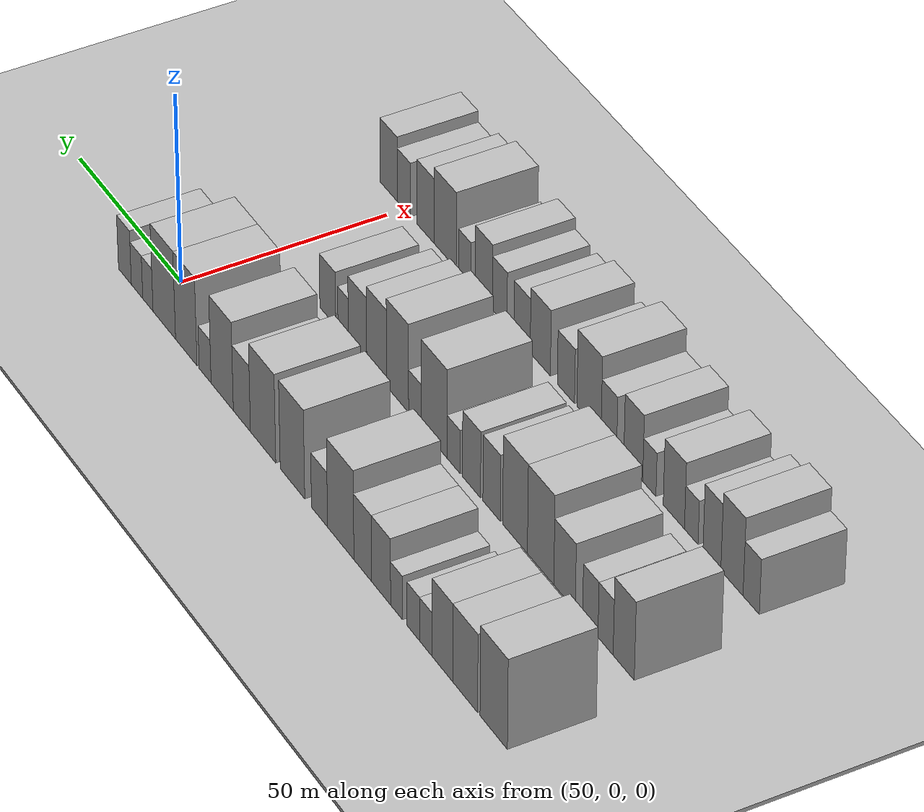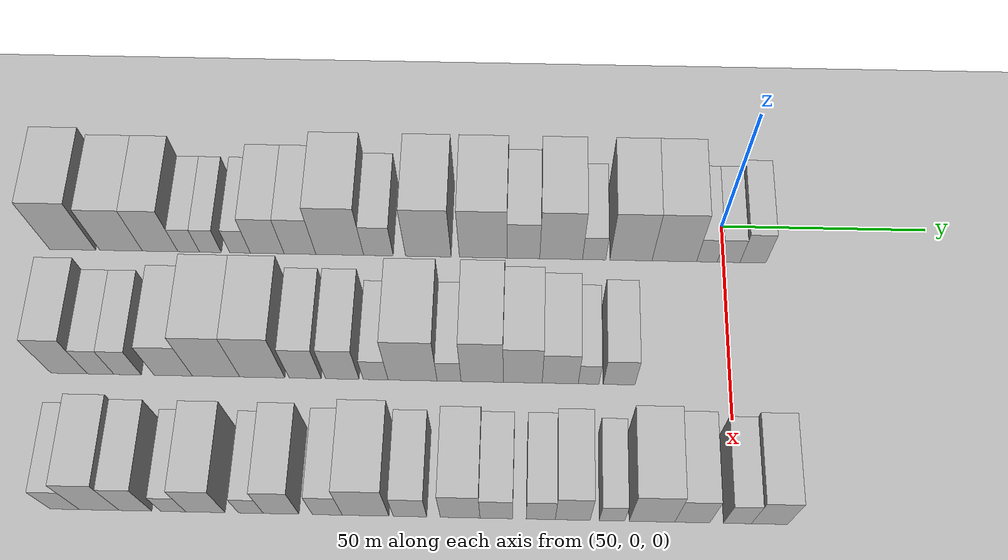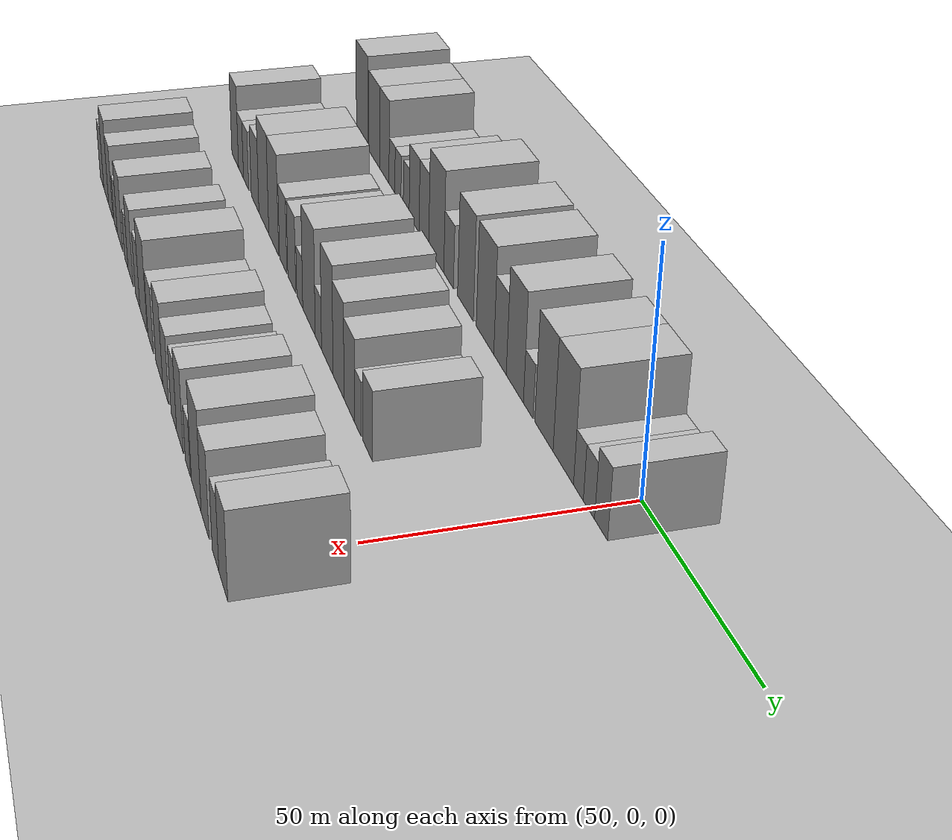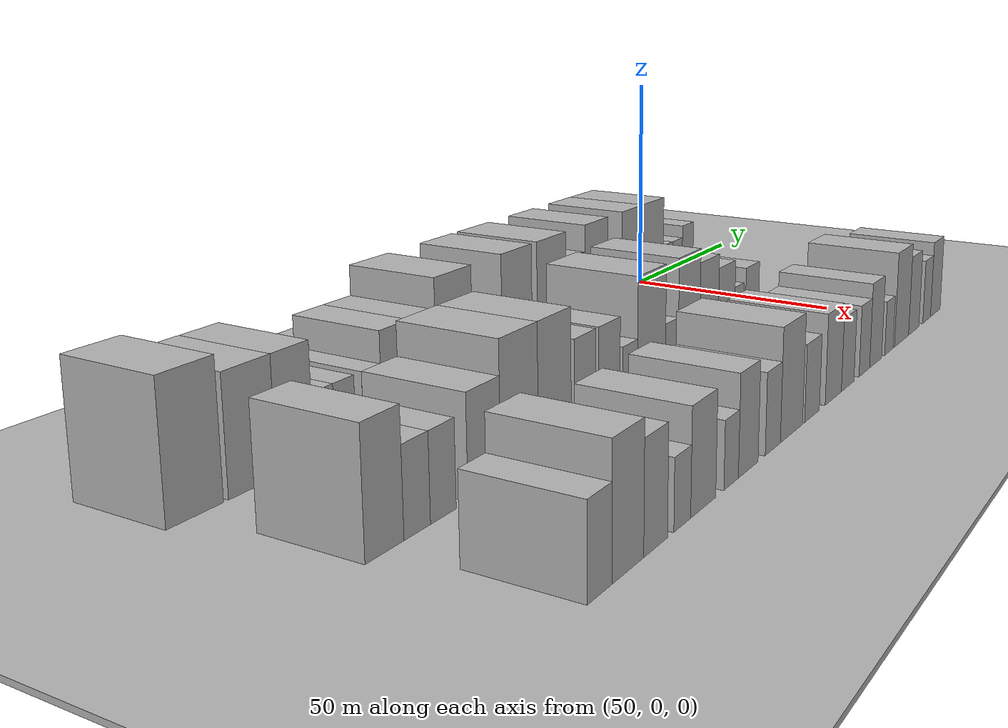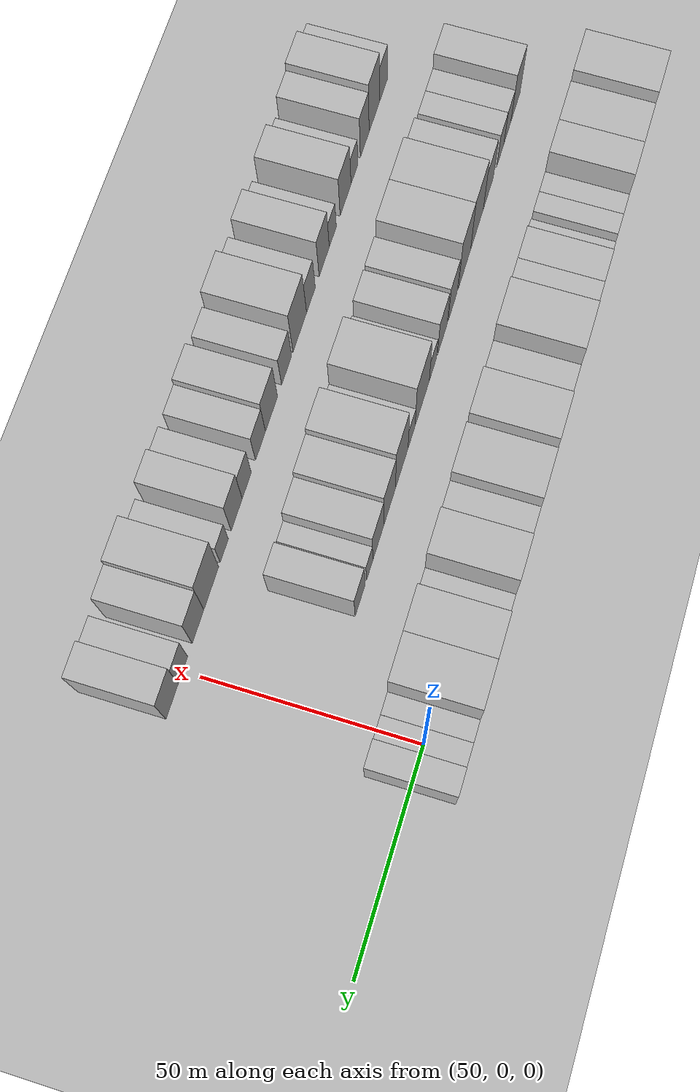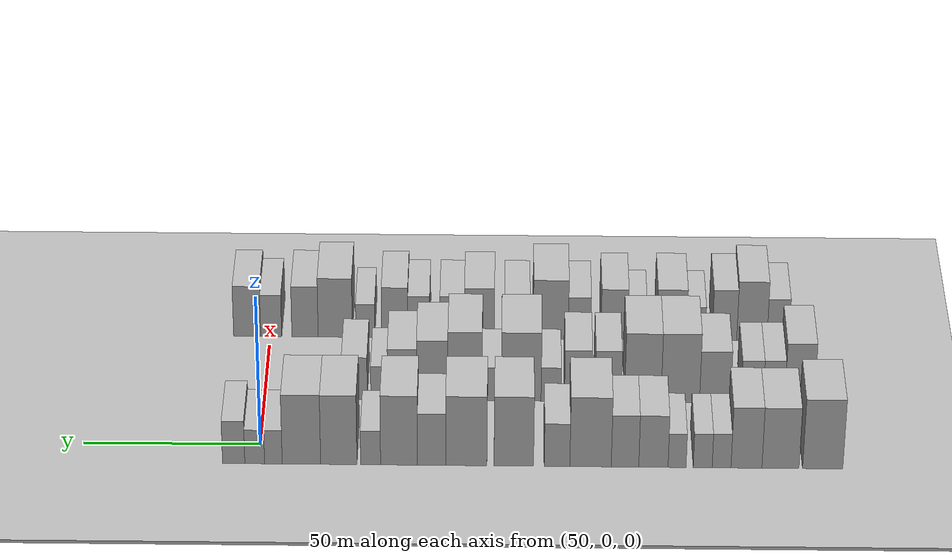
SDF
<sdf version="1.6">
 <world name="default">
  <include><name>ground_plane_1</name><uri>model://HANNAS_ground_plane</uri></include>
  <include>
   <name>ground_plane_2</name>
   <uri>model://HANNAS_ground_plane</uri>
   <pose>100 0 0  0 0 0</pose>
  </include>
  <model name="building_20">
   <static>1</static>
   <pose>50.0000 -158.3148 0 0.000000 0.000000 0.000000</pose>
   <link name="link">
    <pose>0 0 12.00 0 0 0</pose>
    <collision name="collision"><geometry><box><size>20.0000 11.2554 24.0000</size></box></geometry></collision>
    <visual name="visual">
     <cast_shadows>0</cast_shadows>
     <geometry><box><size>20.0000 11.2554 24.0000</size></box></geometry>
     <material>
      <script>
       <uri>model://HANNAS_wall/materials/scripts</uri>
       <uri>model://HANNAS_wall/materials/textures</uri>
       <name>vrc/HANNAS_wall</name>
      </script>
     </material>
    </visual>
   </link>
  </model>
  <model name="building_21">
   <static>1</static>
   <pose>50.0000 -146.4934 0 0.000000 0.000000 0.000000</pose>
   <link name="link">
    <pose>0 0 10.50 0 0 0</pose>
    <collision name="collision"><geometry><box><size>20.0000 10.3874 21.0000</size></box></geometry></collision>
    <visual name="visual">
     <cast_shadows>0</cast_shadows>
     <geometry><box><size>20.0000 10.3874 21.0000</size></box></geometry>
     <material>
      <script>
       <uri>model://HANNAS_wall/materials/scripts</uri>
       <uri>model://HANNAS_wall/materials/textures</uri>
       <name>vrc/HANNAS_wall</name>
      </script>
     </material>
    </visual>
   </link>
  </model>
  <model name="building_22">
   <static>1</static>
   <pose>50.0000 -136.9624 0 0.000000 0.000000 0.000000</pose>
   <link name="link">
    <pose>0 0 10.50 0 0 0</pose>
    <collision name="collision"><geometry><box><size>20.0000 8.6745 21.0000</size></box></geometry></collision>
    <visual name="visual">
     <cast_shadows>0</cast_shadows>
     <geometry><box><size>20.0000 8.6745 21.0000</size></box></geometry>
     <material>
      <script>
       <uri>model://HANNAS_wall/materials/scripts</uri>
       <uri>model://HANNAS_wall/materials/textures</uri>
       <name>vrc/HANNAS_wall</name>
      </script>
     </material>
    </visual>
   </link>
  </model>
  <model name="building_23">
   <static>1</static>
   <pose>50.0000 -129.9868 0 0.000000 0.000000 0.000000</pose>
   <link name="link">
    <pose>0 0 6.00 0 0 0</pose>
    <collision name="collision"><geometry><box><size>20.0000 5.2768 12.0000</size></box></geometry></collision>
    <visual name="visual">
     <cast_shadows>0</cast_shadows>
     <geometry><box><size>20.0000 5.2768 12.0000</size></box></geometry>
     <material>
      <script>
       <uri>model://HANNAS_wall/materials/scripts</uri>
       <uri>model://HANNAS_wall/materials/textures</uri>
       <name>vrc/HANNAS_wall</name>
      </script>
     </material>
    </visual>
   </link>
  </model>
  <model name="building_24">
   <static>1</static>
   <pose>50.0000 -124.6941 0 0.000000 0.000000 0.000000</pose>
   <link name="link">
    <pose>0 0 6.00 0 0 0</pose>
    <collision name="collision"><geometry><box><size>20.0000 5.3085 12.0000</size></box></geometry></collision>
    <visual name="visual">
     <cast_shadows>0</cast_shadows>
     <geometry><box><size>20.0000 5.3085 12.0000</size></box></geometry>
     <material>
      <script>
       <uri>model://HANNAS_wall/materials/scripts</uri>
       <uri>model://HANNAS_wall/materials/textures</uri>
       <name>vrc/HANNAS_wall</name>
      </script>
     </material>
    </visual>
   </link>
  </model>
  <model name="building_25">
   <static>1</static>
   <pose>50.0000 -117.5120 0 0.000000 0.000000 0.000000</pose>
   <link name="link">
    <pose>0 0 6.00 0 0 0</pose>
    <collision name="collision"><geometry><box><size>20.0000 5.0557 12.0000</size></box></geometry></collision>
    <visual name="visual">
     <cast_shadows>0</cast_shadows>
     <geometry><box><size>20.0000 5.0557 12.0000</size></box></geometry>
     <material>
      <script>
       <uri>model://HANNAS_wall/materials/scripts</uri>
       <uri>model://HANNAS_wall/materials/textures</uri>
       <name>vrc/HANNAS_wall</name>
      </script>
     </material>
    </visual>
   </link>
  </model>
  <model name="building_26">
   <static>1</static>
   <pose>50.0000 -110.8782 0 0.000000 0.000000 0.000000</pose>
   <link name="link">
    <pose>0 0 9.00 0 0 0</pose>
    <collision name="collision"><geometry><box><size>20.0000 8.2120 18.0000</size></box></geometry></collision>
    <visual name="visual">
     <cast_shadows>0</cast_shadows>
     <geometry><box><size>20.0000 8.2120 18.0000</size></box></geometry>
     <material>
      <script>
       <uri>model://HANNAS_wall/materials/scripts</uri>
       <uri>model://HANNAS_wall/materials/textures</uri>
       <name>vrc/HANNAS_wall</name>
      </script>
     </material>
    </visual>
   </link>
  </model>
  <model name="building_27">
   <static>1</static>
   <pose>50.0000 -102.9081 0 0.000000 0.000000 0.000000</pose>
   <link name="link">
    <pose>0 0 9.00 0 0 0</pose>
    <collision name="collision"><geometry><box><size>20.0000 7.7282 18.0000</size></box></geometry></collision>
    <visual name="visual">
     <cast_shadows>0</cast_shadows>
     <geometry><box><size>20.0000 7.7282 18.0000</size></box></geometry>
     <material>
      <script>
       <uri>model://HANNAS_wall/materials/scripts</uri>
       <uri>model://HANNAS_wall/materials/textures</uri>
       <name>vrc/HANNAS_wall</name>
      </script>
     </material>
    </visual>
   </link>
  </model>
  <model name="building_28">
   <static>1</static>
   <pose>50.0000 -93.2294 0 0.000000 0.000000 0.000000</pose>
   <link name="link">
    <pose>0 0 12.00 0 0 0</pose>
    <collision name="collision"><geometry><box><size>20.0000 11.6291 24.0000</size></box></geometry></collision>
    <visual name="visual">
     <cast_shadows>0</cast_shadows>
     <geometry><box><size>20.0000 11.6291 24.0000</size></box></geometry>
     <material>
      <script>
       <uri>model://HANNAS_wall/materials/scripts</uri>
       <uri>model://HANNAS_wall/materials/textures</uri>
       <name>vrc/HANNAS_wall</name>
      </script>
     </material>
    </visual>
   </link>
  </model>
  <model name="building_29">
   <static>1</static>
   <pose>50.0000 -83.8291 0 0.000000 0.000000 0.000000</pose>
   <link name="link">
    <pose>0 0 7.50 0 0 0</pose>
    <collision name="collision"><geometry><box><size>20.0000 7.1716 15.0000</size></box></geometry></collision>
    <visual name="visual">
     <cast_shadows>0</cast_shadows>
     <geometry><box><size>20.0000 7.1716 15.0000</size></box></geometry>
     <material>
      <script>
       <uri>model://HANNAS_wall/materials/scripts</uri>
       <uri>model://HANNAS_wall/materials/textures</uri>
       <name>vrc/HANNAS_wall</name>
      </script>
     </material>
    </visual>
   </link>
  </model>
  <model name="building_30">
   <static>1</static>
   <pose>50.0000 -71.7021 0 0.000000 0.000000 0.000000</pose>
   <link name="link">
    <pose>0 0 12.00 0 0 0</pose>
    <collision name="collision"><geometry><box><size>20.0000 11.0824 24.0000</size></box></geometry></collision>
    <visual name="visual">
     <cast_shadows>0</cast_shadows>
     <geometry><box><size>20.0000 11.0824 24.0000</size></box></geometry>
     <material>
      <script>
       <uri>model://HANNAS_wall/materials/scripts</uri>
       <uri>model://HANNAS_wall/materials/textures</uri>
       <name>vrc/HANNAS_wall</name>
      </script>
     </material>
    </visual>
   </link>
  </model>
  <model name="building_31">
   <static>1</static>
   <pose>50.0000 -58.3676 0 0.000000 0.000000 0.000000</pose>
   <link name="link">
    <pose>0 0 12.00 0 0 0</pose>
    <collision name="collision"><geometry><box><size>20.0000 11.5866 24.0000</size></box></geometry></collision>
    <visual name="visual">
     <cast_shadows>0</cast_shadows>
     <geometry><box><size>20.0000 11.5866 24.0000</size></box></geometry>
     <material>
      <script>
       <uri>model://HANNAS_wall/materials/scripts</uri>
       <uri>model://HANNAS_wall/materials/textures</uri>
       <name>vrc/HANNAS_wall</name>
      </script>
     </material>
    </visual>
   </link>
  </model>
  <model name="building_32">
   <static>1</static>
   <pose>50.0000 -48.6234 0 0.000000 0.000000 0.000000</pose>
   <link name="link">
    <pose>0 0 9.00 0 0 0</pose>
    <collision name="collision"><geometry><box><size>20.0000 7.9017 18.0000</size></box></geometry></collision>
    <visual name="visual">
     <cast_shadows>0</cast_shadows>
     <geometry><box><size>20.0000 7.9017 18.0000</size></box></geometry>
     <material>
      <script>
       <uri>model://HANNAS_wall/materials/scripts</uri>
       <uri>model://HANNAS_wall/materials/textures</uri>
       <name>vrc/HANNAS_wall</name>
      </script>
     </material>
    </visual>
   </link>
  </model>
  <model name="building_33">
   <static>1</static>
   <pose>50.0000 -39.4885 0 0.000000 0.000000 0.000000</pose>
   <link name="link">
    <pose>0 0 12.00 0 0 0</pose>
    <collision name="collision"><geometry><box><size>20.0000 10.3681 24.0000</size></box></geometry></collision>
    <visual name="visual">
     <cast_shadows>0</cast_shadows>
     <geometry><box><size>20.0000 10.3681 24.0000</size></box></geometry>
     <material>
      <script>
       <uri>model://HANNAS_wall/materials/scripts</uri>
       <uri>model://HANNAS_wall/materials/textures</uri>
       <name>vrc/HANNAS_wall</name>
      </script>
     </material>
    </visual>
   </link>
  </model>
  <model name="building_34">
   <static>1</static>
   <pose>50.0000 -31.4960 0 0.000000 0.000000 0.000000</pose>
   <link name="link">
    <pose>0 0 6.00 0 0 0</pose>
    <collision name="collision"><geometry><box><size>20.0000 5.6169 12.0000</size></box></geometry></collision>
    <visual name="visual">
     <cast_shadows>0</cast_shadows>
     <geometry><box><size>20.0000 5.6169 12.0000</size></box></geometry>
     <material>
      <script>
       <uri>model://HANNAS_wall/materials/scripts</uri>
       <uri>model://HANNAS_wall/materials/textures</uri>
       <name>vrc/HANNAS_wall</name>
      </script>
     </material>
    </visual>
   </link>
  </model>
  <model name="building_35">
   <static>1</static>
   <pose>50.0000 -22.5851 0 0.000000 0.000000 0.000000</pose>
   <link name="link">
    <pose>0 0 12.00 0 0 0</pose>
    <collision name="collision"><geometry><box><size>20.0000 10.2047 24.0000</size></box></geometry></collision>
    <visual name="visual">
     <cast_shadows>0</cast_shadows>
     <geometry><box><size>20.0000 10.2047 24.0000</size></box></geometry>
     <material>
      <script>
       <uri>model://HANNAS_wall/materials/scripts</uri>
       <uri>model://HANNAS_wall/materials/textures</uri>
       <name>vrc/HANNAS_wall</name>
      </script>
     </material>
    </visual>
   </link>
  </model>
  <model name="building_36">
   <static>1</static>
   <pose>50.0000 -12.0826 0 0.000000 0.000000 0.000000</pose>
   <link name="link">
    <pose>0 0 12.00 0 0 0</pose>
    <collision name="collision"><geometry><box><size>20.0000 10.8003 24.0000</size></box></geometry></collision>
    <visual name="visual">
     <cast_shadows>0</cast_shadows>
     <geometry><box><size>20.0000 10.8003 24.0000</size></box></geometry>
     <material>
      <script>
       <uri>model://HANNAS_wall/materials/scripts</uri>
       <uri>model://HANNAS_wall/materials/textures</uri>
       <name>vrc/HANNAS_wall</name>
      </script>
     </material>
    </visual>
   </link>
  </model>
  <model name="building_37">
   <static>1</static>
   <pose>50.0000 -4.2004 0 0.000000 0.000000 0.000000</pose>
   <link name="link">
    <pose>0 0 6.00 0 0 0</pose>
    <collision name="collision"><geometry><box><size>20.0000 4.9642 12.0000</size></box></geometry></collision>
    <visual name="visual">
     <cast_shadows>0</cast_shadows>
     <geometry><box><size>20.0000 4.9642 12.0000</size></box></geometry>
     <material>
      <script>
       <uri>model://HANNAS_wall/materials/scripts</uri>
       <uri>model://HANNAS_wall/materials/textures</uri>
       <name>vrc/HANNAS_wall</name>
      </script>
     </material>
    </visual>
   </link>
  </model>
  <model name="building_38">
   <static>1</static>
   <pose>50.0000 1.0541 0 0.000000 0.000000 0.000000</pose>
   <link name="link">
    <pose>0 0 6.00 0 0 0</pose>
    <collision name="collision"><geometry><box><size>20.0000 5.5447 12.0000</size></box></geometry></collision>
    <visual name="visual">
     <cast_shadows>0</cast_shadows>
     <geometry><box><size>20.0000 5.5447 12.0000</size></box></geometry>
     <material>
      <script>
       <uri>model://HANNAS_wall/materials/scripts</uri>
       <uri>model://HANNAS_wall/materials/textures</uri>
       <name>vrc/HANNAS_wall</name>
      </script>
     </material>
    </visual>
   </link>
  </model>
  <model name="building_39">
   <static>1</static>
   <pose>50.0000 6.9536 0 0.000000 0.000000 0.000000</pose>
   <link name="link">
    <pose>0 0 7.50 0 0 0</pose>
    <collision name="collision"><geometry><box><size>20.0000 6.2543 15.0000</size></box></geometry></collision>
    <visual name="visual">
     <cast_shadows>0</cast_shadows>
     <geometry><box><size>20.0000 6.2543 15.0000</size></box></geometry>
     <material>
      <script>
       <uri>model://HANNAS_wall/materials/scripts</uri>
       <uri>model://HANNAS_wall/materials/textures</uri>
       <name>vrc/HANNAS_wall</name>
      </script>
     </material>
    </visual>
   </link>
  </model>
  <model name="building_95">
   <static>1</static>
   <pose>82.0000 -153.7157 0 0.000000 0.000000 0.000000</pose>
   <link name="link">
    <pose>0 0 10.50 0 0 0</pose>
    <collision name="collision"><geometry><box><size>20.0000 8.5290 21.0000</size></box></geometry></collision>
    <visual name="visual">
     <cast_shadows>0</cast_shadows>
     <geometry><box><size>20.0000 8.5290 21.0000</size></box></geometry>
     <material>
      <script>
       <uri>model://HANNAS_wall/materials/scripts</uri>
       <uri>model://HANNAS_wall/materials/textures</uri>
       <name>vrc/HANNAS_wall</name>
      </script>
     </material>
    </visual>
   </link>
  </model>
  <model name="building_96">
   <static>1</static>
   <pose>82.0000 -146.3620 0 0.000000 0.000000 0.000000</pose>
   <link name="link">
    <pose>0 0 7.50 0 0 0</pose>
    <collision name="collision"><geometry><box><size>20.0000 6.1785 15.0000</size></box></geometry></collision>
    <visual name="visual">
     <cast_shadows>0</cast_shadows>
     <geometry><box><size>20.0000 6.1785 15.0000</size></box></geometry>
     <material>
      <script>
       <uri>model://HANNAS_wall/materials/scripts</uri>
       <uri>model://HANNAS_wall/materials/textures</uri>
       <name>vrc/HANNAS_wall</name>
      </script>
     </material>
    </visual>
   </link>
  </model>
  <model name="building_97">
   <static>1</static>
   <pose>82.0000 -140.0977 0 0.000000 0.000000 0.000000</pose>
   <link name="link">
    <pose>0 0 7.50 0 0 0</pose>
    <collision name="collision"><geometry><box><size>20.0000 6.3500 15.0000</size></box></geometry></collision>
    <visual name="visual">
     <cast_shadows>0</cast_shadows>
     <geometry><box><size>20.0000 6.3500 15.0000</size></box></geometry>
     <material>
      <script>
       <uri>model://HANNAS_wall/materials/scripts</uri>
       <uri>model://HANNAS_wall/materials/textures</uri>
       <name>vrc/HANNAS_wall</name>
      </script>
     </material>
    </visual>
   </link>
  </model>
  <model name="building_98">
   <static>1</static>
   <pose>82.0000 -129.4753 0 0.000000 0.000000 0.000000</pose>
   <link name="link">
    <pose>0 0 9.00 0 0 0</pose>
    <collision name="collision"><geometry><box><size>20.0000 8.8949 18.0000</size></box></geometry></collision>
    <visual name="visual">
     <cast_shadows>0</cast_shadows>
     <geometry><box><size>20.0000 8.8949 18.0000</size></box></geometry>
     <material>
      <script>
       <uri>model://HANNAS_wall/materials/scripts</uri>
       <uri>model://HANNAS_wall/materials/textures</uri>
       <name>vrc/HANNAS_wall</name>
      </script>
     </material>
    </visual>
   </link>
  </model>
  <model name="building_99">
   <static>1</static>
   <pose>82.0000 -119.5047 0 0.000000 0.000000 0.000000</pose>
   <link name="link">
    <pose>0 0 12.00 0 0 0</pose>
    <collision name="collision"><geometry><box><size>20.0000 11.0463 24.0000</size></box></geometry></collision>
    <visual name="visual">
     <cast_shadows>0</cast_shadows>
     <geometry><box><size>20.0000 11.0463 24.0000</size></box></geometry>
     <material>
      <script>
       <uri>model://HANNAS_wall/materials/scripts</uri>
       <uri>model://HANNAS_wall/materials/textures</uri>
       <name>vrc/HANNAS_wall</name>
      </script>
     </material>
    </visual>
   </link>
  </model>
  <model name="building_100">
   <static>1</static>
   <pose>82.0000 -108.7408 0 0.000000 0.000000 0.000000</pose>
   <link name="link">
    <pose>0 0 12.00 0 0 0</pose>
    <collision name="collision"><geometry><box><size>20.0000 10.4816 24.0000</size></box></geometry></collision>
    <visual name="visual">
     <cast_shadows>0</cast_shadows>
     <geometry><box><size>20.0000 10.4816 24.0000</size></box></geometry>
     <material>
      <script>
       <uri>model://HANNAS_wall/materials/scripts</uri>
       <uri>model://HANNAS_wall/materials/textures</uri>
       <name>vrc/HANNAS_wall</name>
      </script>
     </material>
    </visual>
   </link>
  </model>
  <model name="building_101">
   <static>1</static>
   <pose>82.0000 -98.7670 0 0.000000 0.000000 0.000000</pose>
   <link name="link">
    <pose>0 0 9.00 0 0 0</pose>
    <collision name="collision"><geometry><box><size>20.0000 7.4661 18.0000</size></box></geometry></collision>
    <visual name="visual">
     <cast_shadows>0</cast_shadows>
     <geometry><box><size>20.0000 7.4661 18.0000</size></box></geometry>
     <material>
      <script>
       <uri>model://HANNAS_wall/materials/scripts</uri>
       <uri>model://HANNAS_wall/materials/textures</uri>
       <name>vrc/HANNAS_wall</name>
      </script>
     </material>
    </visual>
   </link>
  </model>
  <model name="building_102">
   <static>1</static>
   <pose>82.0000 -90.1340 0 0.000000 0.000000 0.000000</pose>
   <link name="link">
    <pose>0 0 9.00 0 0 0</pose>
    <collision name="collision"><geometry><box><size>20.0000 7.7999 18.0000</size></box></geometry></collision>
    <visual name="visual">
     <cast_shadows>0</cast_shadows>
     <geometry><box><size>20.0000 7.7999 18.0000</size></box></geometry>
     <material>
      <script>
       <uri>model://HANNAS_wall/materials/scripts</uri>
       <uri>model://HANNAS_wall/materials/textures</uri>
       <name>vrc/HANNAS_wall</name>
      </script>
     </material>
    </visual>
   </link>
  </model>
  <model name="building_103">
   <static>1</static>
   <pose>82.0000 -82.3709 0 0.000000 0.000000 0.000000</pose>
   <link name="link">
    <pose>0 0 6.00 0 0 0</pose>
    <collision name="collision"><geometry><box><size>20.0000 5.7263 12.0000</size></box></geometry></collision>
    <visual name="visual">
     <cast_shadows>0</cast_shadows>
     <geometry><box><size>20.0000 5.7263 12.0000</size></box></geometry>
     <material>
      <script>
       <uri>model://HANNAS_wall/materials/scripts</uri>
       <uri>model://HANNAS_wall/materials/textures</uri>
       <name>vrc/HANNAS_wall</name>
      </script>
     </material>
    </visual>
   </link>
  </model>
  <model name="building_104">
   <static>1</static>
   <pose>82.0000 -73.8028 0 0.000000 0.000000 0.000000</pose>
   <link name="link">
    <pose>0 0 12.00 0 0 0</pose>
    <collision name="collision"><geometry><box><size>20.0000 11.4099 24.0000</size></box></geometry></collision>
    <visual name="visual">
     <cast_shadows>0</cast_shadows>
     <geometry><box><size>20.0000 11.4099 24.0000</size></box></geometry>
     <material>
      <script>
       <uri>model://HANNAS_wall/materials/scripts</uri>
       <uri>model://HANNAS_wall/materials/textures</uri>
       <name>vrc/HANNAS_wall</name>
      </script>
     </material>
    </visual>
   </link>
  </model>
  <model name="building_105">
   <static>1</static>
   <pose>82.0000 -65.3200 0 0.000000 0.000000 0.000000</pose>
   <link name="link">
    <pose>0 0 6.00 0 0 0</pose>
    <collision name="collision"><geometry><box><size>20.0000 5.5558 12.0000</size></box></geometry></collision>
    <visual name="visual">
     <cast_shadows>0</cast_shadows>
     <geometry><box><size>20.0000 5.5558 12.0000</size></box></geometry>
     <material>
      <script>
       <uri>model://HANNAS_wall/materials/scripts</uri>
       <uri>model://HANNAS_wall/materials/textures</uri>
       <name>vrc/HANNAS_wall</name>
      </script>
     </material>
    </visual>
   </link>
  </model>
  <model name="building_106">
   <static>1</static>
   <pose>82.0000 -57.6411 0 0.000000 0.000000 0.000000</pose>
   <link name="link">
    <pose>0 0 12.00 0 0 0</pose>
    <collision name="collision"><geometry><box><size>20.0000 9.8020 24.0000</size></box></geometry></collision>
    <visual name="visual">
     <cast_shadows>0</cast_shadows>
     <geometry><box><size>20.0000 9.8020 24.0000</size></box></geometry>
     <material>
      <script>
       <uri>model://HANNAS_wall/materials/scripts</uri>
       <uri>model://HANNAS_wall/materials/textures</uri>
       <name>vrc/HANNAS_wall</name>
      </script>
     </material>
    </visual>
   </link>
  </model>
  <model name="building_107">
   <static>1</static>
   <pose>82.0000 -48.2474 0 0.000000 0.000000 0.000000</pose>
   <link name="link">
    <pose>0 0 10.50 0 0 0</pose>
    <collision name="collision"><geometry><box><size>20.0000 8.9854 21.0000</size></box></geometry></collision>
    <visual name="visual">
     <cast_shadows>0</cast_shadows>
     <geometry><box><size>20.0000 8.9854 21.0000</size></box></geometry>
     <material>
      <script>
       <uri>model://HANNAS_wall/materials/scripts</uri>
       <uri>model://HANNAS_wall/materials/textures</uri>
       <name>vrc/HANNAS_wall</name>
      </script>
     </material>
    </visual>
   </link>
  </model>
  <model name="building_108">
   <static>1</static>
   <pose>82.0000 -39.5782 0 0.000000 0.000000 0.000000</pose>
   <link name="link">
    <pose>0 0 9.00 0 0 0</pose>
    <collision name="collision"><geometry><box><size>20.0000 8.3529 18.0000</size></box></geometry></collision>
    <visual name="visual">
     <cast_shadows>0</cast_shadows>
     <geometry><box><size>20.0000 8.3529 18.0000</size></box></geometry>
     <material>
      <script>
       <uri>model://HANNAS_wall/materials/scripts</uri>
       <uri>model://HANNAS_wall/materials/textures</uri>
       <name>vrc/HANNAS_wall</name>
      </script>
     </material>
    </visual>
   </link>
  </model>
  <model name="building_109">
   <static>1</static>
   <pose>82.0000 -32.9991 0 0.000000 0.000000 0.000000</pose>
   <link name="link">
    <pose>0 0 6.00 0 0 0</pose>
    <collision name="collision"><geometry><box><size>20.0000 4.8054 12.0000</size></box></geometry></collision>
    <visual name="visual">
     <cast_shadows>0</cast_shadows>
     <geometry><box><size>20.0000 4.8054 12.0000</size></box></geometry>
     <material>
      <script>
       <uri>model://HANNAS_wall/materials/scripts</uri>
       <uri>model://HANNAS_wall/materials/textures</uri>
       <name>vrc/HANNAS_wall</name>
      </script>
     </material>
    </visual>
   </link>
  </model>
  <model name="building_110">
   <static>1</static>
   <pose>82.0000 -25.9191 0 0.000000 0.000000 0.000000</pose>
   <link name="link">
    <pose>0 0 7.50 0 0 0</pose>
    <collision name="collision"><geometry><box><size>20.0000 7.3547 15.0000</size></box></geometry></collision>
    <visual name="visual">
     <cast_shadows>0</cast_shadows>
     <geometry><box><size>20.0000 7.3547 15.0000</size></box></geometry>
     <material>
      <script>
       <uri>model://HANNAS_wall/materials/scripts</uri>
       <uri>model://HANNAS_wall/materials/textures</uri>
       <name>vrc/HANNAS_wall</name>
      </script>
     </material>
    </visual>
   </link>
  </model>
  <model name="building_165">
   <static>1</static>
   <pose>114.0000 -149.3189 0 0.000000 0.000000 0.000000</pose>
   <link name="link">
    <pose>0 0 7.50 0 0 0</pose>
    <collision name="collision"><geometry><box><size>20.0000 6.4750 15.0000</size></box></geometry></collision>
    <visual name="visual">
     <cast_shadows>0</cast_shadows>
     <geometry><box><size>20.0000 6.4750 15.0000</size></box></geometry>
     <material>
      <script>
       <uri>model://HANNAS_wall/materials/scripts</uri>
       <uri>model://HANNAS_wall/materials/textures</uri>
       <name>vrc/HANNAS_wall</name>
      </script>
     </material>
    </visual>
   </link>
  </model>
  <model name="building_166">
   <static>1</static>
   <pose>114.0000 -141.6308 0 0.000000 0.000000 0.000000</pose>
   <link name="link">
    <pose>0 0 10.50 0 0 0</pose>
    <collision name="collision"><geometry><box><size>20.0000 8.9012 21.0000</size></box></geometry></collision>
    <visual name="visual">
     <cast_shadows>0</cast_shadows>
     <geometry><box><size>20.0000 8.9012 21.0000</size></box></geometry>
     <material>
      <script>
       <uri>model://HANNAS_wall/materials/scripts</uri>
       <uri>model://HANNAS_wall/materials/textures</uri>
       <name>vrc/HANNAS_wall</name>
      </script>
     </material>
    </visual>
   </link>
  </model>
  <model name="building_167">
   <static>1</static>
   <pose>114.0000 -133.5724 0 0.000000 0.000000 0.000000</pose>
   <link name="link">
    <pose>0 0 9.00 0 0 0</pose>
    <collision name="collision"><geometry><box><size>20.0000 7.2157 18.0000</size></box></geometry></collision>
    <visual name="visual">
     <cast_shadows>0</cast_shadows>
     <geometry><box><size>20.0000 7.2157 18.0000</size></box></geometry>
     <material>
      <script>
       <uri>model://HANNAS_wall/materials/scripts</uri>
       <uri>model://HANNAS_wall/materials/textures</uri>
       <name>vrc/HANNAS_wall</name>
      </script>
     </material>
    </visual>
   </link>
  </model>
  <model name="building_168">
   <static>1</static>
   <pose>114.0000 -125.1932 0 0.000000 0.000000 0.000000</pose>
   <link name="link">
    <pose>0 0 6.00 0 0 0</pose>
    <collision name="collision"><geometry><box><size>20.0000 5.5426 12.0000</size></box></geometry></collision>
    <visual name="visual">
     <cast_shadows>0</cast_shadows>
     <geometry><box><size>20.0000 5.5426 12.0000</size></box></geometry>
     <material>
      <script>
       <uri>model://HANNAS_wall/materials/scripts</uri>
       <uri>model://HANNAS_wall/materials/textures</uri>
       <name>vrc/HANNAS_wall</name>
      </script>
     </material>
    </visual>
   </link>
  </model>
  <model name="building_169">
   <static>1</static>
   <pose>114.0000 -118.0538 0 0.000000 0.000000 0.000000</pose>
   <link name="link">
    <pose>0 0 9.00 0 0 0</pose>
    <collision name="collision"><geometry><box><size>20.0000 8.7363 18.0000</size></box></geometry></collision>
    <visual name="visual">
     <cast_shadows>0</cast_shadows>
     <geometry><box><size>20.0000 8.7363 18.0000</size></box></geometry>
     <material>
      <script>
       <uri>model://HANNAS_wall/materials/scripts</uri>
       <uri>model://HANNAS_wall/materials/textures</uri>
       <name>vrc/HANNAS_wall</name>
      </script>
     </material>
    </visual>
   </link>
  </model>
  <model name="building_170">
   <static>1</static>
   <pose>114.0000 -107.9243 0 0.000000 0.000000 0.000000</pose>
   <link name="link">
    <pose>0 0 6.00 0 0 0</pose>
    <collision name="collision"><geometry><box><size>20.0000 5.5229 12.0000</size></box></geometry></collision>
    <visual name="visual">
     <cast_shadows>0</cast_shadows>
     <geometry><box><size>20.0000 5.5229 12.0000</size></box></geometry>
     <material>
      <script>
       <uri>model://HANNAS_wall/materials/scripts</uri>
       <uri>model://HANNAS_wall/materials/textures</uri>
       <name>vrc/HANNAS_wall</name>
      </script>
     </material>
    </visual>
   </link>
  </model>
  <model name="building_171">
   <static>1</static>
   <pose>114.0000 -101.2121 0 0.000000 0.000000 0.000000</pose>
   <link name="link">
    <pose>0 0 9.00 0 0 0</pose>
    <collision name="collision"><geometry><box><size>20.0000 7.9015 18.0000</size></box></geometry></collision>
    <visual name="visual">
     <cast_shadows>0</cast_shadows>
     <geometry><box><size>20.0000 7.9015 18.0000</size></box></geometry>
     <material>
      <script>
       <uri>model://HANNAS_wall/materials/scripts</uri>
       <uri>model://HANNAS_wall/materials/textures</uri>
       <name>vrc/HANNAS_wall</name>
      </script>
     </material>
    </visual>
   </link>
  </model>
  <model name="building_172">
   <static>1</static>
   <pose>114.0000 -90.9580 0 0.000000 0.000000 0.000000</pose>
   <link name="link">
    <pose>0 0 7.50 0 0 0</pose>
    <collision name="collision"><geometry><box><size>20.0000 6.6066 15.0000</size></box></geometry></collision>
    <visual name="visual">
     <cast_shadows>0</cast_shadows>
     <geometry><box><size>20.0000 6.6066 15.0000</size></box></geometry>
     <material>
      <script>
       <uri>model://HANNAS_wall/materials/scripts</uri>
       <uri>model://HANNAS_wall/materials/textures</uri>
       <name>vrc/HANNAS_wall</name>
      </script>
     </material>
    </visual>
   </link>
  </model>
  <model name="building_173">
   <static>1</static>
   <pose>114.0000 -82.4939 0 0.000000 0.000000 0.000000</pose>
   <link name="link">
    <pose>0 0 10.50 0 0 0</pose>
    <collision name="collision"><geometry><box><size>20.0000 10.3217 21.0000</size></box></geometry></collision>
    <visual name="visual">
     <cast_shadows>0</cast_shadows>
     <geometry><box><size>20.0000 10.3217 21.0000</size></box></geometry>
     <material>
      <script>
       <uri>model://HANNAS_wall/materials/scripts</uri>
       <uri>model://HANNAS_wall/materials/textures</uri>
       <name>vrc/HANNAS_wall</name>
      </script>
     </material>
    </visual>
   </link>
  </model>
  <model name="building_174">
   <static>1</static>
   <pose>114.0000 -72.6323 0 0.000000 0.000000 0.000000</pose>
   <link name="link">
    <pose>0 0 7.50 0 0 0</pose>
    <collision name="collision"><geometry><box><size>20.0000 7.4015 15.0000</size></box></geometry></collision>
    <visual name="visual">
     <cast_shadows>0</cast_shadows>
     <geometry><box><size>20.0000 7.4015 15.0000</size></box></geometry>
     <material>
      <script>
       <uri>model://HANNAS_wall/materials/scripts</uri>
       <uri>model://HANNAS_wall/materials/textures</uri>
       <name>vrc/HANNAS_wall</name>
      </script>
     </material>
    </visual>
   </link>
  </model>
  <model name="building_175">
   <static>1</static>
   <pose>114.0000 -61.5366 0 0.000000 0.000000 0.000000</pose>
   <link name="link">
    <pose>0 0 9.00 0 0 0</pose>
    <collision name="collision"><geometry><box><size>20.0000 8.7900 18.0000</size></box></geometry></collision>
    <visual name="visual">
     <cast_shadows>0</cast_shadows>
     <geometry><box><size>20.0000 8.7900 18.0000</size></box></geometry>
     <material>
      <script>
       <uri>model://HANNAS_wall/materials/scripts</uri>
       <uri>model://HANNAS_wall/materials/textures</uri>
       <name>vrc/HANNAS_wall</name>
      </script>
     </material>
    </visual>
   </link>
  </model>
  <model name="building_176">
   <static>1</static>
   <pose>114.0000 -53.5395 0 0.000000 0.000000 0.000000</pose>
   <link name="link">
    <pose>0 0 7.50 0 0 0</pose>
    <collision name="collision"><geometry><box><size>20.0000 7.2041 15.0000</size></box></geometry></collision>
    <visual name="visual">
     <cast_shadows>0</cast_shadows>
     <geometry><box><size>20.0000 7.2041 15.0000</size></box></geometry>
     <material>
      <script>
       <uri>model://HANNAS_wall/materials/scripts</uri>
       <uri>model://HANNAS_wall/materials/textures</uri>
       <name>vrc/HANNAS_wall</name>
      </script>
     </material>
    </visual>
   </link>
  </model>
  <model name="building_177">
   <static>1</static>
   <pose>114.0000 -43.7259 0 0.000000 0.000000 0.000000</pose>
   <link name="link">
    <pose>0 0 7.50 0 0 0</pose>
    <collision name="collision"><geometry><box><size>20.0000 6.4232 15.0000</size></box></geometry></collision>
    <visual name="visual">
     <cast_shadows>0</cast_shadows>
     <geometry><box><size>20.0000 6.4232 15.0000</size></box></geometry>
     <material>
      <script>
       <uri>model://HANNAS_wall/materials/scripts</uri>
       <uri>model://HANNAS_wall/materials/textures</uri>
       <name>vrc/HANNAS_wall</name>
      </script>
     </material>
    </visual>
   </link>
  </model>
  <model name="building_178">
   <static>1</static>
   <pose>114.0000 -36.6583 0 0.000000 0.000000 0.000000</pose>
   <link name="link">
    <pose>0 0 9.00 0 0 0</pose>
    <collision name="collision"><geometry><box><size>20.0000 7.7120 18.0000</size></box></geometry></collision>
    <visual name="visual">
     <cast_shadows>0</cast_shadows>
     <geometry><box><size>20.0000 7.7120 18.0000</size></box></geometry>
     <material>
      <script>
       <uri>model://HANNAS_wall/materials/scripts</uri>
       <uri>model://HANNAS_wall/materials/textures</uri>
       <name>vrc/HANNAS_wall</name>
      </script>
     </material>
    </visual>
   </link>
  </model>
  <model name="building_179">
   <static>1</static>
   <pose>114.0000 -27.9953 0 0.000000 0.000000 0.000000</pose>
   <link name="link">
    <pose>0 0 6.00 0 0 0</pose>
    <collision name="collision"><geometry><box><size>20.0000 5.6139 12.0000</size></box></geometry></collision>
    <visual name="visual">
     <cast_shadows>0</cast_shadows>
     <geometry><box><size>20.0000 5.6139 12.0000</size></box></geometry>
     <material>
      <script>
       <uri>model://HANNAS_wall/materials/scripts</uri>
       <uri>model://HANNAS_wall/materials/textures</uri>
       <name>vrc/HANNAS_wall</name>
      </script>
     </material>
    </visual>
   </link>
  </model>
  <model name="building_180">
   <static>1</static>
   <pose>114.0000 -19.1496 0 0.000000 0.000000 0.000000</pose>
   <link name="link">
    <pose>0 0 10.50 0 0 0</pose>
    <collision name="collision"><geometry><box><size>20.0000 10.0775 21.0000</size></box></geometry></collision>
    <visual name="visual">
     <cast_shadows>0</cast_shadows>
     <geometry><box><size>20.0000 10.0775 21.0000</size></box></geometry>
     <material>
      <script>
       <uri>model://HANNAS_wall/materials/scripts</uri>
       <uri>model://HANNAS_wall/materials/textures</uri>
       <name>vrc/HANNAS_wall</name>
      </script>
     </material>
    </visual>
   </link>
  </model>
  <model name="building_181">
   <static>1</static>
   <pose>114.0000 -10.2372 0 0.000000 0.000000 0.000000</pose>
   <link name="link">
    <pose>0 0 9.00 0 0 0</pose>
    <collision name="collision"><geometry><box><size>20.0000 7.7474 18.0000</size></box></geometry></collision>
    <visual name="visual">
     <cast_shadows>0</cast_shadows>
     <geometry><box><size>20.0000 7.7474 18.0000</size></box></geometry>
     <material>
      <script>
       <uri>model://HANNAS_wall/materials/scripts</uri>
       <uri>model://HANNAS_wall/materials/textures</uri>
       <name>vrc/HANNAS_wall</name>
      </script>
     </material>
    </visual>
   </link>
  </model>
  <model name="building_182">
   <static>1</static>
   <pose>114.0000 -0.2756 0 0.000000 0.000000 0.000000</pose>
   <link name="link">
    <pose>0 0 7.50 0 0 0</pose>
    <collision name="collision"><geometry><box><size>20.0000 6.1758 15.0000</size></box></geometry></collision>
    <visual name="visual">
     <cast_shadows>0</cast_shadows>
     <geometry><box><size>20.0000 6.1758 15.0000</size></box></geometry>
     <material>
      <script>
       <uri>model://HANNAS_wall/materials/scripts</uri>
       <uri>model://HANNAS_wall/materials/textures</uri>
       <name>vrc/HANNAS_wall</name>
      </script>
     </material>
    </visual>
   </link>
  </model>
  <model name="building_183">
   <static>1</static>
   <pose>114.0000 6.7943 0 0.000000 0.000000 0.000000</pose>
   <link name="link">
    <pose>0 0 9.00 0 0 0</pose>
    <collision name="collision"><geometry><box><size>20.0000 7.9640 18.0000</size></box></geometry></collision>
    <visual name="visual">
     <cast_shadows>0</cast_shadows>
     <geometry><box><size>20.0000 7.9640 18.0000</size></box></geometry>
     <material>
      <script>
       <uri>model://HANNAS_wall/materials/scripts</uri>
       <uri>model://HANNAS_wall/materials/textures</uri>
       <name>vrc/HANNAS_wall</name>
      </script>
     </material>
    </visual>
   </link>
  </model>
 </world>
</sdf>
